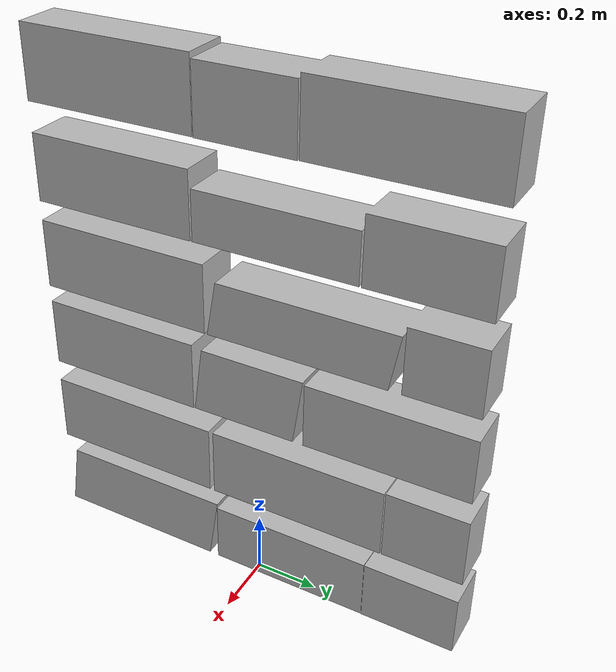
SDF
<?xml version="1.0" ?>
<sdf version="1.6">
  <model name="aws_robomaker_retail_BookA_01">
    <link name="link">
      <inertial>
        <mass>1</mass>
      </inertial>
      <collision name="collision">
        <geometry>
          <mesh>
            <uri>file://models/aws_robomaker_retail_BookA_01/meshes/aws_BookA_01_collision.DAE</uri>
            <scale>1 1 1</scale>
          </mesh>
        </geometry>
      </collision>
      <visual name="visual">
	    <geometry>
          <mesh>
            <uri>file://models/aws_robomaker_retail_BookA_01/meshes/aws_BookA_01_visual.DAE</uri>
          </mesh>
        </geometry>
        <meta>
          <layer>1</layer>
        </meta>
      </visual>
    </link>
 <static>1</static>
  </model>
</sdf>
